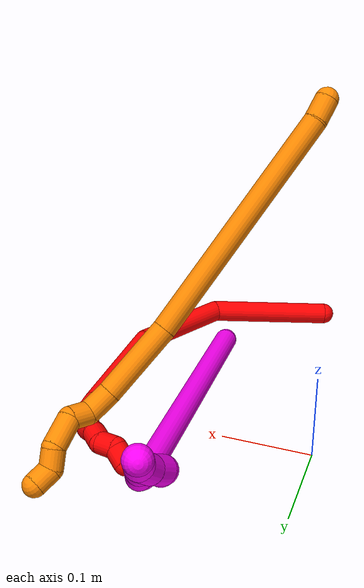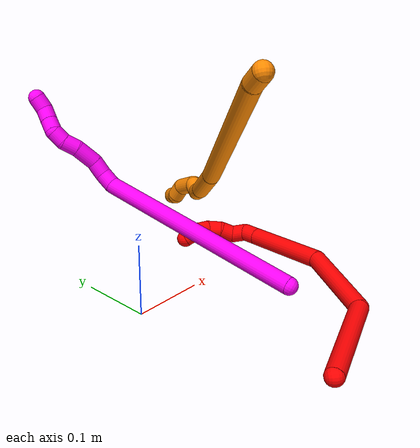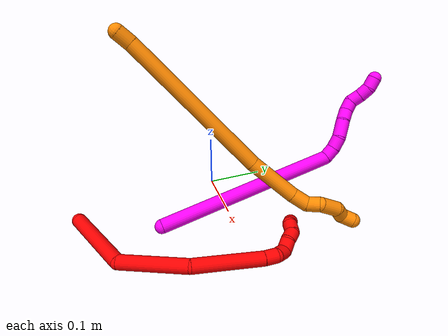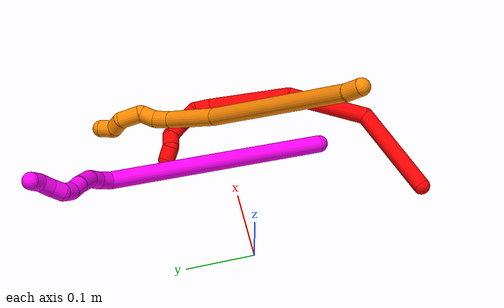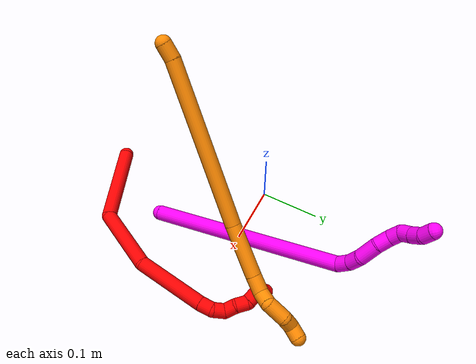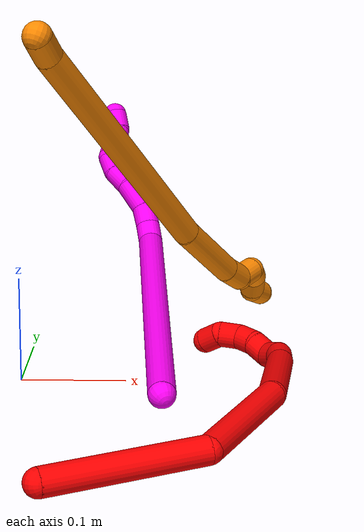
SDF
<sdf version="1.7">
 <world name="default">
  <model name="2">
   <static>0</static>
   <link name="2">
    <collision name="collision-cylinder-e_1_1_4">
     <pose>0.028242 0.057731 0.027329 -1.12868 0.416312 -0.265826</pose>
     <geometry><cylinder><radius>0.0125</radius><length>0.139677</length></cylinder></geometry>
     <surface>
      <friction><ode><mu>1.16</mu><mu2>1.16</mu2><slip1>0</slip1><slip2>0</slip2></ode></friction>
      <contact><ode><kp>1e+06</kp><kd>1</kd><max_vel>0</max_vel><min_depth>0.001</min_depth></ode></contact>
     </surface>
    </collision>
    <visual name="visual-cylinder-e_1_1_4">
     <pose>0.028242 0.057731 0.027329 -1.12868 0.416312 -0.265826</pose>
     <geometry><cylinder><radius>0.0125</radius><length>0.139677</length></cylinder></geometry>
     <material><ambient>1 0 0 1</ambient></material>
    </visual>
    <collision name="collision-cylinder-e_2_4_5">
     <pose>0.074362 0.168877 0.03733 -1.88448 0.308224 -0.421077</pose>
     <geometry><cylinder><radius>0.0125</radius><length>0.117863</length></cylinder></geometry>
     <surface>
      <friction><ode><mu>1.16</mu><mu2>1.16</mu2><slip1>0</slip1><slip2>0</slip2></ode></friction>
      <contact><ode><kp>1e+06</kp><kd>1</kd><max_vel>0</max_vel><min_depth>0.001</min_depth></ode></contact>
     </surface>
    </collision>
    <visual name="visual-cylinder-e_2_4_5">
     <pose>0.074362 0.168877 0.03733 -1.88448 0.308224 -0.421077</pose>
     <geometry><cylinder><radius>0.0125</radius><length>0.117863</length></cylinder></geometry>
     <material><ambient>1 0 0 1</ambient></material>
    </visual>
    <collision name="collision-cylinder-e_3_5_6">
     <pose>0.111744 0.263834 -0.017931 -2.31082 0.333737 -0.729604</pose>
     <geometry><cylinder><radius>0.0125</radius><length>0.119084</length></cylinder></geometry>
     <surface>
      <friction><ode><mu>1.16</mu><mu2>1.16</mu2><slip1>0</slip1><slip2>0</slip2></ode></friction>
      <contact><ode><kp>1e+06</kp><kd>1</kd><max_vel>0</max_vel><min_depth>0.001</min_depth></ode></contact>
     </surface>
    </collision>
    <visual name="visual-cylinder-e_3_5_6">
     <pose>0.111744 0.263834 -0.017931 -2.31082 0.333737 -0.729604</pose>
     <geometry><cylinder><radius>0.0125</radius><length>0.119084</length></cylinder></geometry>
     <material><ambient>1 0 0 1</ambient></material>
    </visual>
    <collision name="collision-cylinder-e_4_6_7">
     <pose>0.133722 0.31286 -0.063733 -2.38123 0.223981 -0.548643</pose>
     <geometry><cylinder><radius>0.0125</radius><length>0.022271</length></cylinder></geometry>
     <surface>
      <friction><ode><mu>1.16</mu><mu2>1.16</mu2><slip1>0</slip1><slip2>0</slip2></ode></friction>
      <contact><ode><kp>1e+06</kp><kd>1</kd><max_vel>0</max_vel><min_depth>0.001</min_depth></ode></contact>
     </surface>
    </collision>
    <visual name="visual-cylinder-e_4_6_7">
     <pose>0.133722 0.31286 -0.063733 -2.38123 0.223981 -0.548643</pose>
     <geometry><cylinder><radius>0.0125</radius><length>0.022271</length></cylinder></geometry>
     <material><ambient>1 0 0 1</ambient></material>
    </visual>
    <collision name="collision-cylinder-e_5_7_8">
     <pose>0.138631 0.322052 -0.081587 -2.97212 0.235929 -1.89789</pose>
     <geometry><cylinder><radius>0.0125</radius><length>0.020842</length></cylinder></geometry>
     <surface>
      <friction><ode><mu>1.16</mu><mu2>1.16</mu2><slip1>0</slip1><slip2>0</slip2></ode></friction>
      <contact><ode><kp>1e+06</kp><kd>1</kd><max_vel>0</max_vel><min_depth>0.001</min_depth></ode></contact>
     </surface>
    </collision>
    <visual name="visual-cylinder-e_5_7_8">
     <pose>0.138631 0.322052 -0.081587 -2.97212 0.235929 -1.89789</pose>
     <geometry><cylinder><radius>0.0125</radius><length>0.020842</length></cylinder></geometry>
     <material><ambient>1 0 0 1</ambient></material>
    </visual>
    <collision name="collision-cylinder-e_6_8_9">
     <pose>0.136167 0.32581 -0.100075 -2.90504 -0.51074 2.2873</pose>
     <geometry><cylinder><radius>0.0125</radius><length>0.020048</length></cylinder></geometry>
     <surface>
      <friction><ode><mu>1.16</mu><mu2>1.16</mu2><slip1>0</slip1><slip2>0</slip2></ode></friction>
      <contact><ode><kp>1e+06</kp><kd>1</kd><max_vel>0</max_vel><min_depth>0.001</min_depth></ode></contact>
     </surface>
    </collision>
    <visual name="visual-cylinder-e_6_8_9">
     <pose>0.136167 0.32581 -0.100075 -2.90504 -0.51074 2.2873</pose>
     <geometry><cylinder><radius>0.0125</radius><length>0.020048</length></cylinder></geometry>
     <material><ambient>1 0 0 1</ambient></material>
    </visual>
    <collision name="collision-cylinder-e_7_9_10">
     <pose>0.129329 0.328977 -0.118327 -3.02747 -0.194934 2.08412</pose>
     <geometry><cylinder><radius>0.0125</radius><length>0.020009</length></cylinder></geometry>
     <surface>
      <friction><ode><mu>1.16</mu><mu2>1.16</mu2><slip1>0</slip1><slip2>0</slip2></ode></friction>
      <contact><ode><kp>1e+06</kp><kd>1</kd><max_vel>0</max_vel><min_depth>0.001</min_depth></ode></contact>
     </surface>
    </collision>
    <visual name="visual-cylinder-e_7_9_10">
     <pose>0.129329 0.328977 -0.118327 -3.02747 -0.194934 2.08412</pose>
     <geometry><cylinder><radius>0.0125</radius><length>0.020009</length></cylinder></geometry>
     <material><ambient>1 0 0 1</ambient></material>
    </visual>
    <collision name="collision-cylinder-e_8_10_11">
     <pose>0.123284 0.325975 -0.136242 2.6742 -0.422147 -1.46574</pose>
     <geometry><cylinder><radius>0.0125</radius><length>0.020049</length></cylinder></geometry>
     <surface>
      <friction><ode><mu>1.16</mu><mu2>1.16</mu2><slip1>0</slip1><slip2>0</slip2></ode></friction>
      <contact><ode><kp>1e+06</kp><kd>1</kd><max_vel>0</max_vel><min_depth>0.001</min_depth></ode></contact>
     </surface>
    </collision>
    <visual name="visual-cylinder-e_8_10_11">
     <pose>0.123284 0.325975 -0.136242 2.6742 -0.422147 -1.46574</pose>
     <geometry><cylinder><radius>0.0125</radius><length>0.020049</length></cylinder></geometry>
     <material><ambient>1 0 0 1</ambient></material>
    </visual>
    <collision name="collision-cylinder-e_9_11_2">
     <pose>0.121621 0.318603 -0.153627 2.80261 0.244942 1.24705</pose>
     <geometry><cylinder><radius>0.0125</radius><length>0.020158</length></cylinder></geometry>
     <surface>
      <friction><ode><mu>1.16</mu><mu2>1.16</mu2><slip1>0</slip1><slip2>0</slip2></ode></friction>
      <contact><ode><kp>1e+06</kp><kd>1</kd><max_vel>0</max_vel><min_depth>0.001</min_depth></ode></contact>
     </surface>
    </collision>
    <visual name="visual-cylinder-e_9_11_2">
     <pose>0.121621 0.318603 -0.153627 2.80261 0.244942 1.24705</pose>
     <geometry><cylinder><radius>0.0125</radius><length>0.020158</length></cylinder></geometry>
     <material><ambient>1 0 0 1</ambient></material>
    </visual>
    <collision name="collision-sphere-2">
     <pose>0.124065 0.315351 -0.162849 0 -0 0</pose>
     <geometry><sphere><radius>0.0125</radius></sphere></geometry>
     <surface>
      <friction><ode><mu>1.16</mu><mu2>1.16</mu2><slip1>0</slip1><slip2>0</slip2></ode></friction>
      <contact><ode><kp>1e+06</kp><kd>1</kd><max_vel>0</max_vel><min_depth>0.001</min_depth></ode></contact>
     </surface>
    </collision>
    <visual name="visual-sphere-2">
     <pose>0.124065 0.315351 -0.162849 0 -0 0</pose>
     <geometry><sphere><radius>0.0125</radius></sphere></geometry>
     <material><ambient>1 0 0 1</ambient></material>
    </visual>
    <collision name="collision-sphere-11">
     <pose>0.119177 0.321855 -0.144406 0 -0 0</pose>
     <geometry><sphere><radius>0.0125</radius></sphere></geometry>
     <surface>
      <friction><ode><mu>1.16</mu><mu2>1.16</mu2><slip1>0</slip1><slip2>0</slip2></ode></friction>
      <contact><ode><kp>1e+06</kp><kd>1</kd><max_vel>0</max_vel><min_depth>0.001</min_depth></ode></contact>
     </surface>
    </collision>
    <visual name="visual-sphere-11">
     <pose>0.119177 0.321855 -0.144406 0 -0 0</pose>
     <geometry><sphere><radius>0.0125</radius></sphere></geometry>
     <material><ambient>1 0 0 1</ambient></material>
    </visual>
    <collision name="collision-sphere-10">
     <pose>0.127391 0.330095 -0.128079 0 -0 0</pose>
     <geometry><sphere><radius>0.0125</radius></sphere></geometry>
     <surface>
      <friction><ode><mu>1.16</mu><mu2>1.16</mu2><slip1>0</slip1><slip2>0</slip2></ode></friction>
      <contact><ode><kp>1e+06</kp><kd>1</kd><max_vel>0</max_vel><min_depth>0.001</min_depth></ode></contact>
     </surface>
    </collision>
    <visual name="visual-sphere-10">
     <pose>0.127391 0.330095 -0.128079 0 -0 0</pose>
     <geometry><sphere><radius>0.0125</radius></sphere></geometry>
     <material><ambient>1 0 0 1</ambient></material>
    </visual>
    <collision name="collision-sphere-9">
     <pose>0.131267 0.327859 -0.108576 0 -0 0</pose>
     <geometry><sphere><radius>0.0125</radius></sphere></geometry>
     <surface>
      <friction><ode><mu>1.16</mu><mu2>1.16</mu2><slip1>0</slip1><slip2>0</slip2></ode></friction>
      <contact><ode><kp>1e+06</kp><kd>1</kd><max_vel>0</max_vel><min_depth>0.001</min_depth></ode></contact>
     </surface>
    </collision>
    <visual name="visual-sphere-9">
     <pose>0.131267 0.327859 -0.108576 0 -0 0</pose>
     <geometry><sphere><radius>0.0125</radius></sphere></geometry>
     <material><ambient>1 0 0 1</ambient></material>
    </visual>
    <collision name="collision-sphere-4">
     <pose>0.056484 0.115463 0.054657 0 -0 0</pose>
     <geometry><sphere><radius>0.0125</radius></sphere></geometry>
     <surface>
      <friction><ode><mu>1.16</mu><mu2>1.16</mu2><slip1>0</slip1><slip2>0</slip2></ode></friction>
      <contact><ode><kp>1e+06</kp><kd>1</kd><max_vel>0</max_vel><min_depth>0.001</min_depth></ode></contact>
     </surface>
    </collision>
    <visual name="visual-sphere-4">
     <pose>0.056484 0.115463 0.054657 0 -0 0</pose>
     <geometry><sphere><radius>0.0125</radius></sphere></geometry>
     <material><ambient>1 0 0 1</ambient></material>
    </visual>
    <collision name="collision-sphere-1">
     <geometry><sphere><radius>0.0125</radius></sphere></geometry>
     <surface>
      <friction><ode><mu>1.16</mu><mu2>1.16</mu2><slip1>0</slip1><slip2>0</slip2></ode></friction>
      <contact><ode><kp>1e+06</kp><kd>1</kd><max_vel>0</max_vel><min_depth>0.001</min_depth></ode></contact>
     </surface>
    </collision>
    <visual name="visual-sphere-1">
     <geometry><sphere><radius>0.0125</radius></sphere></geometry>
     <material><ambient>1 0 0 1</ambient></material>
    </visual>
    <collision name="collision-sphere-8">
     <pose>0.141067 0.323761 -0.091574 0 -0 0</pose>
     <geometry><sphere><radius>0.0125</radius></sphere></geometry>
     <surface>
      <friction><ode><mu>1.16</mu><mu2>1.16</mu2><slip1>0</slip1><slip2>0</slip2></ode></friction>
      <contact><ode><kp>1e+06</kp><kd>1</kd><max_vel>0</max_vel><min_depth>0.001</min_depth></ode></contact>
     </surface>
    </collision>
    <visual name="visual-sphere-8">
     <pose>0.141067 0.323761 -0.091574 0 -0 0</pose>
     <geometry><sphere><radius>0.0125</radius></sphere></geometry>
     <material><ambient>1 0 0 1</ambient></material>
    </visual>
    <collision name="collision-sphere-5">
     <pose>0.09224 0.222292 0.020003 0 -0 0</pose>
     <geometry><sphere><radius>0.0125</radius></sphere></geometry>
     <surface>
      <friction><ode><mu>1.16</mu><mu2>1.16</mu2><slip1>0</slip1><slip2>0</slip2></ode></friction>
      <contact><ode><kp>1e+06</kp><kd>1</kd><max_vel>0</max_vel><min_depth>0.001</min_depth></ode></contact>
     </surface>
    </collision>
    <visual name="visual-sphere-5">
     <pose>0.09224 0.222292 0.020003 0 -0 0</pose>
     <geometry><sphere><radius>0.0125</radius></sphere></geometry>
     <material><ambient>1 0 0 1</ambient></material>
    </visual>
    <collision name="collision-sphere-6">
     <pose>0.131249 0.305377 -0.055866 0 -0 0</pose>
     <geometry><sphere><radius>0.0125</radius></sphere></geometry>
     <surface>
      <friction><ode><mu>1.16</mu><mu2>1.16</mu2><slip1>0</slip1><slip2>0</slip2></ode></friction>
      <contact><ode><kp>1e+06</kp><kd>1</kd><max_vel>0</max_vel><min_depth>0.001</min_depth></ode></contact>
     </surface>
    </collision>
    <visual name="visual-sphere-6">
     <pose>0.131249 0.305377 -0.055866 0 -0 0</pose>
     <geometry><sphere><radius>0.0125</radius></sphere></geometry>
     <material><ambient>1 0 0 1</ambient></material>
    </visual>
    <collision name="collision-sphere-7">
     <pose>0.136195 0.320343 -0.0716 0 -0 0</pose>
     <geometry><sphere><radius>0.0125</radius></sphere></geometry>
     <surface>
      <friction><ode><mu>1.16</mu><mu2>1.16</mu2><slip1>0</slip1><slip2>0</slip2></ode></friction>
      <contact><ode><kp>1e+06</kp><kd>1</kd><max_vel>0</max_vel><min_depth>0.001</min_depth></ode></contact>
     </surface>
    </collision>
    <visual name="visual-sphere-7">
     <pose>0.136195 0.320343 -0.0716 0 -0 0</pose>
     <geometry><sphere><radius>0.0125</radius></sphere></geometry>
     <material><ambient>1 0 0 1</ambient></material>
    </visual>
    <inertial>
     <pose>0.084249 0.198277 -0.014481 0 -0 0</pose>
     <mass>0.5</mass>
     <inertia>
      <ixx>0.000238</ixx>
      <ixy>0</ixy>
      <ixz>0</ixz>
      <iyy>-0.000131</iyy>
      <iyz>0</iyz>
      <izz>-0.000619</izz>
     </inertia>
    </inertial>
   </link>
   <pose>0.047116 -0.263269 0.012125 1.2337 1.09924 0.462341</pose>
  </model>
  <model name="10">
   <static>0</static>
   <link name="10">
    <collision name="collision-cylinder-e_1_1_4">
     <pose>-0.010525 0.065509 0.145848 -0.422159 -0.065737 0.01409</pose>
     <geometry><cylinder><radius>0.0125</radius><length>0.320461</length></cylinder></geometry>
     <surface>
      <friction><ode><mu>1.16</mu><mu2>1.16</mu2><slip1>0</slip1><slip2>0</slip2></ode></friction>
      <contact><ode><kp>1e+06</kp><kd>1</kd><max_vel>0</max_vel><min_depth>0.001</min_depth></ode></contact>
     </surface>
    </collision>
    <visual name="visual-cylinder-e_1_1_4">
     <pose>-0.010525 0.065509 0.145848 -0.422159 -0.065737 0.01409</pose>
     <geometry><cylinder><radius>0.0125</radius><length>0.320461</length></cylinder></geometry>
     <material><ambient>1 0 0.964706 1</ambient></material>
    </visual>
    <collision name="collision-cylinder-e_2_4_5">
     <pose>-0.017525 0.131438 0.302179 -0.03997 0.324155 -0.006536</pose>
     <geometry><cylinder><radius>0.0125</radius><length>0.022138</length></cylinder></geometry>
     <surface>
      <friction><ode><mu>1.16</mu><mu2>1.16</mu2><slip1>0</slip1><slip2>0</slip2></ode></friction>
      <contact><ode><kp>1e+06</kp><kd>1</kd><max_vel>0</max_vel><min_depth>0.001</min_depth></ode></contact>
     </surface>
    </collision>
    <visual name="visual-cylinder-e_2_4_5">
     <pose>-0.017525 0.131438 0.302179 -0.03997 0.324155 -0.006536</pose>
     <geometry><cylinder><radius>0.0125</radius><length>0.022138</length></cylinder></geometry>
     <material><ambient>1 0 0.964706 1</ambient></material>
    </visual>
    <collision name="collision-cylinder-e_3_5_6">
     <pose>-0.009051 0.129919 0.322328 0.197951 0.465321 0.04705</pose>
     <geometry><cylinder><radius>0.0125</radius><length>0.02206</length></cylinder></geometry>
     <surface>
      <friction><ode><mu>1.16</mu><mu2>1.16</mu2><slip1>0</slip1><slip2>0</slip2></ode></friction>
      <contact><ode><kp>1e+06</kp><kd>1</kd><max_vel>0</max_vel><min_depth>0.001</min_depth></ode></contact>
     </surface>
    </collision>
    <visual name="visual-cylinder-e_3_5_6">
     <pose>-0.009051 0.129919 0.322328 0.197951 0.465321 0.04705</pose>
     <geometry><cylinder><radius>0.0125</radius><length>0.02206</length></cylinder></geometry>
     <material><ambient>1 0 0.964706 1</ambient></material>
    </visual>
    <collision name="collision-cylinder-e_4_6_7">
     <pose>-0.000963 0.121292 0.346653 0.42802 0.192364 0.041931</pose>
     <geometry><cylinder><radius>0.0125</radius><length>0.032834</length></cylinder></geometry>
     <surface>
      <friction><ode><mu>1.16</mu><mu2>1.16</mu2><slip1>0</slip1><slip2>0</slip2></ode></friction>
      <contact><ode><kp>1e+06</kp><kd>1</kd><max_vel>0</max_vel><min_depth>0.001</min_depth></ode></contact>
     </surface>
    </collision>
    <visual name="visual-cylinder-e_4_6_7">
     <pose>-0.000963 0.121292 0.346653 0.42802 0.192364 0.041931</pose>
     <geometry><cylinder><radius>0.0125</radius><length>0.032834</length></cylinder></geometry>
     <material><ambient>1 0 0.964706 1</ambient></material>
    </visual>
    <collision name="collision-cylinder-e_5_7_8">
     <pose>0.00197 0.110656 0.371832 0.359021 -0.018333 -0.003327</pose>
     <geometry><cylinder><radius>0.0125</radius><length>0.022474</length></cylinder></geometry>
     <surface>
      <friction><ode><mu>1.16</mu><mu2>1.16</mu2><slip1>0</slip1><slip2>0</slip2></ode></friction>
      <contact><ode><kp>1e+06</kp><kd>1</kd><max_vel>0</max_vel><min_depth>0.001</min_depth></ode></contact>
     </surface>
    </collision>
    <visual name="visual-cylinder-e_5_7_8">
     <pose>0.00197 0.110656 0.371832 0.359021 -0.018333 -0.003327</pose>
     <geometry><cylinder><radius>0.0125</radius><length>0.022474</length></cylinder></geometry>
     <material><ambient>1 0 0.964706 1</ambient></material>
    </visual>
    <collision name="collision-cylinder-e_6_8_9">
     <pose>0.004734 0.104736 0.391711 0.207698 0.30106 0.031614</pose>
     <geometry><cylinder><radius>0.0125</radius><length>0.020031</length></cylinder></geometry>
     <surface>
      <friction><ode><mu>1.16</mu><mu2>1.16</mu2><slip1>0</slip1><slip2>0</slip2></ode></friction>
      <contact><ode><kp>1e+06</kp><kd>1</kd><max_vel>0</max_vel><min_depth>0.001</min_depth></ode></contact>
     </surface>
    </collision>
    <visual name="visual-cylinder-e_6_8_9">
     <pose>0.004734 0.104736 0.391711 0.207698 0.30106 0.031614</pose>
     <geometry><cylinder><radius>0.0125</radius><length>0.020031</length></cylinder></geometry>
     <material><ambient>1 0 0.964706 1</ambient></material>
    </visual>
    <collision name="collision-cylinder-e_7_9_10">
     <pose>0.012473 0.106345 0.409099 -0.419611 0.497043 -0.107969</pose>
     <geometry><cylinder><radius>0.0125</radius><length>0.020002</length></cylinder></geometry>
     <surface>
      <friction><ode><mu>1.16</mu><mu2>1.16</mu2><slip1>0</slip1><slip2>0</slip2></ode></friction>
      <contact><ode><kp>1e+06</kp><kd>1</kd><max_vel>0</max_vel><min_depth>0.001</min_depth></ode></contact>
     </surface>
    </collision>
    <visual name="visual-cylinder-e_7_9_10">
     <pose>0.012473 0.106345 0.409099 -0.419611 0.497043 -0.107969</pose>
     <geometry><cylinder><radius>0.0125</radius><length>0.020002</length></cylinder></geometry>
     <material><ambient>1 0 0.964706 1</ambient></material>
    </visual>
    <collision name="collision-cylinder-e_8_10_11">
     <pose>0.022769 0.112289 0.425119 -0.287467 0.585603 -0.087208</pose>
     <geometry><cylinder><radius>0.0125</radius><length>0.02</length></cylinder></geometry>
     <surface>
      <friction><ode><mu>1.16</mu><mu2>1.16</mu2><slip1>0</slip1><slip2>0</slip2></ode></friction>
      <contact><ode><kp>1e+06</kp><kd>1</kd><max_vel>0</max_vel><min_depth>0.001</min_depth></ode></contact>
     </surface>
    </collision>
    <visual name="visual-cylinder-e_8_10_11">
     <pose>0.022769 0.112289 0.425119 -0.287467 0.585603 -0.087208</pose>
     <geometry><cylinder><radius>0.0125</radius><length>0.02</length></cylinder></geometry>
     <material><ambient>1 0 0.964706 1</ambient></material>
    </visual>
    <collision name="collision-cylinder-e_9_11_2">
     <pose>0.032881 0.113204 0.441879 0.163687 0.476336 0.039823</pose>
     <geometry><cylinder><radius>0.0125</radius><length>0.02</length></cylinder></geometry>
     <surface>
      <friction><ode><mu>1.16</mu><mu2>1.16</mu2><slip1>0</slip1><slip2>0</slip2></ode></friction>
      <contact><ode><kp>1e+06</kp><kd>1</kd><max_vel>0</max_vel><min_depth>0.001</min_depth></ode></contact>
     </surface>
    </collision>
    <visual name="visual-cylinder-e_9_11_2">
     <pose>0.032881 0.113204 0.441879 0.163687 0.476336 0.039823</pose>
     <geometry><cylinder><radius>0.0125</radius><length>0.02</length></cylinder></geometry>
     <material><ambient>1 0 0.964706 1</ambient></material>
    </visual>
    <collision name="collision-sphere-2">
     <pose>0.037466 0.111756 0.450647 0 -0 0</pose>
     <geometry><sphere><radius>0.0125</radius></sphere></geometry>
     <surface>
      <friction><ode><mu>1.16</mu><mu2>1.16</mu2><slip1>0</slip1><slip2>0</slip2></ode></friction>
      <contact><ode><kp>1e+06</kp><kd>1</kd><max_vel>0</max_vel><min_depth>0.001</min_depth></ode></contact>
     </surface>
    </collision>
    <visual name="visual-sphere-2">
     <pose>0.037466 0.111756 0.450647 0 -0 0</pose>
     <geometry><sphere><radius>0.0125</radius></sphere></geometry>
     <material><ambient>1 0 0.964706 1</ambient></material>
    </visual>
    <collision name="collision-sphere-11">
     <pose>0.028296 0.114652 0.433111 0 -0 0</pose>
     <geometry><sphere><radius>0.0125</radius></sphere></geometry>
     <surface>
      <friction><ode><mu>1.16</mu><mu2>1.16</mu2><slip1>0</slip1><slip2>0</slip2></ode></friction>
      <contact><ode><kp>1e+06</kp><kd>1</kd><max_vel>0</max_vel><min_depth>0.001</min_depth></ode></contact>
     </surface>
    </collision>
    <visual name="visual-sphere-11">
     <pose>0.028296 0.114652 0.433111 0 -0 0</pose>
     <geometry><sphere><radius>0.0125</radius></sphere></geometry>
     <material><ambient>1 0 0.964706 1</ambient></material>
    </visual>
    <collision name="collision-sphere-10">
     <pose>0.017241 0.109927 0.417127 0 -0 0</pose>
     <geometry><sphere><radius>0.0125</radius></sphere></geometry>
     <surface>
      <friction><ode><mu>1.16</mu><mu2>1.16</mu2><slip1>0</slip1><slip2>0</slip2></ode></friction>
      <contact><ode><kp>1e+06</kp><kd>1</kd><max_vel>0</max_vel><min_depth>0.001</min_depth></ode></contact>
     </surface>
    </collision>
    <visual name="visual-sphere-10">
     <pose>0.017241 0.109927 0.417127 0 -0 0</pose>
     <geometry><sphere><radius>0.0125</radius></sphere></geometry>
     <material><ambient>1 0 0.964706 1</ambient></material>
    </visual>
    <collision name="collision-sphere-9">
     <pose>0.007704 0.102764 0.40107 0 -0 0</pose>
     <geometry><sphere><radius>0.0125</radius></sphere></geometry>
     <surface>
      <friction><ode><mu>1.16</mu><mu2>1.16</mu2><slip1>0</slip1><slip2>0</slip2></ode></friction>
      <contact><ode><kp>1e+06</kp><kd>1</kd><max_vel>0</max_vel><min_depth>0.001</min_depth></ode></contact>
     </surface>
    </collision>
    <visual name="visual-sphere-9">
     <pose>0.007704 0.102764 0.40107 0 -0 0</pose>
     <geometry><sphere><radius>0.0125</radius></sphere></geometry>
     <material><ambient>1 0 0.964706 1</ambient></material>
    </visual>
    <collision name="collision-sphere-4">
     <pose>-0.021051 0.131019 0.291695 0 -0 0</pose>
     <geometry><sphere><radius>0.0125</radius></sphere></geometry>
     <surface>
      <friction><ode><mu>1.16</mu><mu2>1.16</mu2><slip1>0</slip1><slip2>0</slip2></ode></friction>
      <contact><ode><kp>1e+06</kp><kd>1</kd><max_vel>0</max_vel><min_depth>0.001</min_depth></ode></contact>
     </surface>
    </collision>
    <visual name="visual-sphere-4">
     <pose>-0.021051 0.131019 0.291695 0 -0 0</pose>
     <geometry><sphere><radius>0.0125</radius></sphere></geometry>
     <material><ambient>1 0 0.964706 1</ambient></material>
    </visual>
    <collision name="collision-sphere-1">
     <geometry><sphere><radius>0.0125</radius></sphere></geometry>
     <surface>
      <friction><ode><mu>1.16</mu><mu2>1.16</mu2><slip1>0</slip1><slip2>0</slip2></ode></friction>
      <contact><ode><kp>1e+06</kp><kd>1</kd><max_vel>0</max_vel><min_depth>0.001</min_depth></ode></contact>
     </surface>
    </collision>
    <visual name="visual-sphere-1">
     <geometry><sphere><radius>0.0125</radius></sphere></geometry>
     <material><ambient>1 0 0.964706 1</ambient></material>
    </visual>
    <collision name="collision-sphere-8">
     <pose>0.001764 0.106708 0.382351 0 -0 0</pose>
     <geometry><sphere><radius>0.0125</radius></sphere></geometry>
     <surface>
      <friction><ode><mu>1.16</mu><mu2>1.16</mu2><slip1>0</slip1><slip2>0</slip2></ode></friction>
      <contact><ode><kp>1e+06</kp><kd>1</kd><max_vel>0</max_vel><min_depth>0.001</min_depth></ode></contact>
     </surface>
    </collision>
    <visual name="visual-sphere-8">
     <pose>0.001764 0.106708 0.382351 0 -0 0</pose>
     <geometry><sphere><radius>0.0125</radius></sphere></geometry>
     <material><ambient>1 0 0.964706 1</ambient></material>
    </visual>
    <collision name="collision-sphere-5">
     <pose>-0.014 0.131857 0.312663 0 -0 0</pose>
     <geometry><sphere><radius>0.0125</radius></sphere></geometry>
     <surface>
      <friction><ode><mu>1.16</mu><mu2>1.16</mu2><slip1>0</slip1><slip2>0</slip2></ode></friction>
      <contact><ode><kp>1e+06</kp><kd>1</kd><max_vel>0</max_vel><min_depth>0.001</min_depth></ode></contact>
     </surface>
    </collision>
    <visual name="visual-sphere-5">
     <pose>-0.014 0.131857 0.312663 0 -0 0</pose>
     <geometry><sphere><radius>0.0125</radius></sphere></geometry>
     <material><ambient>1 0 0.964706 1</ambient></material>
    </visual>
    <collision name="collision-sphere-6">
     <pose>-0.004101 0.12798 0.331993 0 -0 0</pose>
     <geometry><sphere><radius>0.0125</radius></sphere></geometry>
     <surface>
      <friction><ode><mu>1.16</mu><mu2>1.16</mu2><slip1>0</slip1><slip2>0</slip2></ode></friction>
      <contact><ode><kp>1e+06</kp><kd>1</kd><max_vel>0</max_vel><min_depth>0.001</min_depth></ode></contact>
     </surface>
    </collision>
    <visual name="visual-sphere-6">
     <pose>-0.004101 0.12798 0.331993 0 -0 0</pose>
     <geometry><sphere><radius>0.0125</radius></sphere></geometry>
     <material><ambient>1 0 0.964706 1</ambient></material>
    </visual>
    <collision name="collision-sphere-7">
     <pose>0.002176 0.114603 0.361314 0 -0 0</pose>
     <geometry><sphere><radius>0.0125</radius></sphere></geometry>
     <surface>
      <friction><ode><mu>1.16</mu><mu2>1.16</mu2><slip1>0</slip1><slip2>0</slip2></ode></friction>
      <contact><ode><kp>1e+06</kp><kd>1</kd><max_vel>0</max_vel><min_depth>0.001</min_depth></ode></contact>
     </surface>
    </collision>
    <visual name="visual-sphere-7">
     <pose>0.002176 0.114603 0.361314 0 -0 0</pose>
     <geometry><sphere><radius>0.0125</radius></sphere></geometry>
     <material><ambient>1 0 0.964706 1</ambient></material>
    </visual>
    <inertial>
     <pose>-0.004981 0.083947 0.227293 0 -0 0</pose>
     <mass>0.5</mass>
     <inertia>
      <ixx>0.002805</ixx>
      <ixy>0</ixy>
      <ixz>0</ixz>
      <iyy>0.002576</iyy>
      <iyz>0</iyz>
      <izz>-0.000913</izz>
     </inertia>
    </inertial>
   </link>
   <pose>0.13792 -0.131546 0.03564 -0.720556 -0.985044 -0.334154</pose>
  </model>
  <model name="19">
   <static>0</static>
   <link name="19">
    <collision name="collision-cylinder-e_1_1_4">
     <pose>0.005126 0.011648 -0.002245 -1.76122 0.407899 -0.490898</pose>
     <geometry><cylinder><radius>0.0125</radius><length>0.025846</length></cylinder></geometry>
     <surface>
      <friction><ode><mu>1.16</mu><mu2>1.16</mu2><slip1>0</slip1><slip2>0</slip2></ode></friction>
      <contact><ode><kp>1e+06</kp><kd>1</kd><max_vel>0</max_vel><min_depth>0.001</min_depth></ode></contact>
     </surface>
    </collision>
    <visual name="visual-cylinder-e_1_1_4">
     <pose>0.005126 0.011648 -0.002245 -1.76122 0.407899 -0.490898</pose>
     <geometry><cylinder><radius>0.0125</radius><length>0.025846</length></cylinder></geometry>
     <material><ambient>0.996078 0.537255 0 1</ambient></material>
    </visual>
    <collision name="collision-cylinder-e_2_4_5">
     <pose>0.084169 0.129061 -0.027544 -1.78541 0.599116 -0.732274</pose>
     <geometry><cylinder><radius>0.0125</radius><length>0.262154</length></cylinder></geometry>
     <surface>
      <friction><ode><mu>1.16</mu><mu2>1.16</mu2><slip1>0</slip1><slip2>0</slip2></ode></friction>
      <contact><ode><kp>1e+06</kp><kd>1</kd><max_vel>0</max_vel><min_depth>0.001</min_depth></ode></contact>
     </surface>
    </collision>
    <visual name="visual-cylinder-e_2_4_5">
     <pose>0.084169 0.129061 -0.027544 -1.78541 0.599116 -0.732274</pose>
     <geometry><cylinder><radius>0.0125</radius><length>0.262154</length></cylinder></geometry>
     <material><ambient>0.996078 0.537255 0 1</ambient></material>
    </visual>
    <collision name="collision-cylinder-e_3_5_6">
     <pose>0.182205 0.269428 -0.052755 -1.63304 0.607848 -0.644333</pose>
     <geometry><cylinder><radius>0.0125</radius><length>0.08447</length></cylinder></geometry>
     <surface>
      <friction><ode><mu>1.16</mu><mu2>1.16</mu2><slip1>0</slip1><slip2>0</slip2></ode></friction>
      <contact><ode><kp>1e+06</kp><kd>1</kd><max_vel>0</max_vel><min_depth>0.001</min_depth></ode></contact>
     </surface>
    </collision>
    <visual name="visual-cylinder-e_3_5_6">
     <pose>0.182205 0.269428 -0.052755 -1.63304 0.607848 -0.644333</pose>
     <geometry><cylinder><radius>0.0125</radius><length>0.08447</length></cylinder></geometry>
     <material><ambient>0.996078 0.537255 0 1</ambient></material>
    </visual>
    <collision name="collision-cylinder-e_4_6_7">
     <pose>0.214556 0.315825 -0.053851 -1.48113 0.607364 -0.557987</pose>
     <geometry><cylinder><radius>0.0125</radius><length>0.028842</length></cylinder></geometry>
     <surface>
      <friction><ode><mu>1.16</mu><mu2>1.16</mu2><slip1>0</slip1><slip2>0</slip2></ode></friction>
      <contact><ode><kp>1e+06</kp><kd>1</kd><max_vel>0</max_vel><min_depth>0.001</min_depth></ode></contact>
     </surface>
    </collision>
    <visual name="visual-cylinder-e_4_6_7">
     <pose>0.214556 0.315825 -0.053851 -1.48113 0.607364 -0.557987</pose>
     <geometry><cylinder><radius>0.0125</radius><length>0.028842</length></cylinder></geometry>
     <material><ambient>0.996078 0.537255 0 1</ambient></material>
    </visual>
    <collision name="collision-cylinder-e_5_7_8">
     <pose>0.227515 0.334453 -0.045345 -0.742535 0.43765 -0.172729</pose>
     <geometry><cylinder><radius>0.0125</radius><length>0.022315</length></cylinder></geometry>
     <surface>
      <friction><ode><mu>1.16</mu><mu2>1.16</mu2><slip1>0</slip1><slip2>0</slip2></ode></friction>
      <contact><ode><kp>1e+06</kp><kd>1</kd><max_vel>0</max_vel><min_depth>0.001</min_depth></ode></contact>
     </surface>
    </collision>
    <visual name="visual-cylinder-e_5_7_8">
     <pose>0.227515 0.334453 -0.045345 -0.742535 0.43765 -0.172729</pose>
     <geometry><cylinder><radius>0.0125</radius><length>0.022315</length></cylinder></geometry>
     <material><ambient>0.996078 0.537255 0 1</ambient></material>
    </visual>
    <collision name="collision-cylinder-e_6_8_9">
     <pose>0.235354 0.357626 -0.036526 -1.48696 0.187466 -0.172452</pose>
     <geometry><cylinder><radius>0.0125</radius><length>0.03338</length></cylinder></geometry>
     <surface>
      <friction><ode><mu>1.16</mu><mu2>1.16</mu2><slip1>0</slip1><slip2>0</slip2></ode></friction>
      <contact><ode><kp>1e+06</kp><kd>1</kd><max_vel>0</max_vel><min_depth>0.001</min_depth></ode></contact>
     </surface>
    </collision>
    <visual name="visual-cylinder-e_6_8_9">
     <pose>0.235354 0.357626 -0.036526 -1.48696 0.187466 -0.172452</pose>
     <geometry><cylinder><radius>0.0125</radius><length>0.03338</length></cylinder></geometry>
     <material><ambient>0.996078 0.537255 0 1</ambient></material>
    </visual>
    <collision name="collision-cylinder-e_7_9_10">
     <pose>0.240272 0.383311 -0.040136 -2.06067 0.169049 -0.28054</pose>
     <geometry><cylinder><radius>0.0125</radius><length>0.021488</length></cylinder></geometry>
     <surface>
      <friction><ode><mu>1.16</mu><mu2>1.16</mu2><slip1>0</slip1><slip2>0</slip2></ode></friction>
      <contact><ode><kp>1e+06</kp><kd>1</kd><max_vel>0</max_vel><min_depth>0.001</min_depth></ode></contact>
     </surface>
    </collision>
    <visual name="visual-cylinder-e_7_9_10">
     <pose>0.240272 0.383311 -0.040136 -2.06067 0.169049 -0.28054</pose>
     <geometry><cylinder><radius>0.0125</radius><length>0.021488</length></cylinder></geometry>
     <material><ambient>0.996078 0.537255 0 1</ambient></material>
    </visual>
    <collision name="collision-cylinder-e_8_10_2">
     <pose>0.247281 0.401823 -0.042989 -1.34251 0.504928 -0.404213</pose>
     <geometry><cylinder><radius>0.0125</radius><length>0.021505</length></cylinder></geometry>
     <surface>
      <friction><ode><mu>1.16</mu><mu2>1.16</mu2><slip1>0</slip1><slip2>0</slip2></ode></friction>
      <contact><ode><kp>1e+06</kp><kd>1</kd><max_vel>0</max_vel><min_depth>0.001</min_depth></ode></contact>
     </surface>
    </collision>
    <visual name="visual-cylinder-e_8_10_2">
     <pose>0.247281 0.401823 -0.042989 -1.34251 0.504928 -0.404213</pose>
     <geometry><cylinder><radius>0.0125</radius><length>0.021505</length></cylinder></geometry>
     <material><ambient>0.996078 0.537255 0 1</ambient></material>
    </visual>
    <collision name="collision-sphere-2">
     <pose>0.252483 0.410989 -0.04086 0 -0 0</pose>
     <geometry><sphere><radius>0.0125</radius></sphere></geometry>
     <surface>
      <friction><ode><mu>1.16</mu><mu2>1.16</mu2><slip1>0</slip1><slip2>0</slip2></ode></friction>
      <contact><ode><kp>1e+06</kp><kd>1</kd><max_vel>0</max_vel><min_depth>0.001</min_depth></ode></contact>
     </surface>
    </collision>
    <visual name="visual-sphere-2">
     <pose>0.252483 0.410989 -0.04086 0 -0 0</pose>
     <geometry><sphere><radius>0.0125</radius></sphere></geometry>
     <material><ambient>0.996078 0.537255 0 1</ambient></material>
    </visual>
    <collision name="collision-sphere-10">
     <pose>0.24208 0.392656 -0.045119 0 -0 0</pose>
     <geometry><sphere><radius>0.0125</radius></sphere></geometry>
     <surface>
      <friction><ode><mu>1.16</mu><mu2>1.16</mu2><slip1>0</slip1><slip2>0</slip2></ode></friction>
      <contact><ode><kp>1e+06</kp><kd>1</kd><max_vel>0</max_vel><min_depth>0.001</min_depth></ode></contact>
     </surface>
    </collision>
    <visual name="visual-sphere-10">
     <pose>0.24208 0.392656 -0.045119 0 -0 0</pose>
     <geometry><sphere><radius>0.0125</radius></sphere></geometry>
     <material><ambient>0.996078 0.537255 0 1</ambient></material>
    </visual>
    <collision name="collision-sphere-9">
     <pose>0.238464 0.373966 -0.035153 0 -0 0</pose>
     <geometry><sphere><radius>0.0125</radius></sphere></geometry>
     <surface>
      <friction><ode><mu>1.16</mu><mu2>1.16</mu2><slip1>0</slip1><slip2>0</slip2></ode></friction>
      <contact><ode><kp>1e+06</kp><kd>1</kd><max_vel>0</max_vel><min_depth>0.001</min_depth></ode></contact>
     </surface>
    </collision>
    <visual name="visual-sphere-9">
     <pose>0.238464 0.373966 -0.035153 0 -0 0</pose>
     <geometry><sphere><radius>0.0125</radius></sphere></geometry>
     <material><ambient>0.996078 0.537255 0 1</ambient></material>
    </visual>
    <collision name="collision-sphere-4">
     <pose>0.010253 0.023296 -0.004491 0 -0 0</pose>
     <geometry><sphere><radius>0.0125</radius></sphere></geometry>
     <surface>
      <friction><ode><mu>1.16</mu><mu2>1.16</mu2><slip1>0</slip1><slip2>0</slip2></ode></friction>
      <contact><ode><kp>1e+06</kp><kd>1</kd><max_vel>0</max_vel><min_depth>0.001</min_depth></ode></contact>
     </surface>
    </collision>
    <visual name="visual-sphere-4">
     <pose>0.010253 0.023296 -0.004491 0 -0 0</pose>
     <geometry><sphere><radius>0.0125</radius></sphere></geometry>
     <material><ambient>0.996078 0.537255 0 1</ambient></material>
    </visual>
    <collision name="collision-sphere-1">
     <geometry><sphere><radius>0.0125</radius></sphere></geometry>
     <surface>
      <friction><ode><mu>1.16</mu><mu2>1.16</mu2><slip1>0</slip1><slip2>0</slip2></ode></friction>
      <contact><ode><kp>1e+06</kp><kd>1</kd><max_vel>0</max_vel><min_depth>0.001</min_depth></ode></contact>
     </surface>
    </collision>
    <visual name="visual-sphere-1">
     <geometry><sphere><radius>0.0125</radius></sphere></geometry>
     <material><ambient>0.996078 0.537255 0 1</ambient></material>
    </visual>
    <collision name="collision-sphere-8">
     <pose>0.232243 0.341286 -0.037899 0 -0 0</pose>
     <geometry><sphere><radius>0.0125</radius></sphere></geometry>
     <surface>
      <friction><ode><mu>1.16</mu><mu2>1.16</mu2><slip1>0</slip1><slip2>0</slip2></ode></friction>
      <contact><ode><kp>1e+06</kp><kd>1</kd><max_vel>0</max_vel><min_depth>0.001</min_depth></ode></contact>
     </surface>
    </collision>
    <visual name="visual-sphere-8">
     <pose>0.232243 0.341286 -0.037899 0 -0 0</pose>
     <geometry><sphere><radius>0.0125</radius></sphere></geometry>
     <material><ambient>0.996078 0.537255 0 1</ambient></material>
    </visual>
    <collision name="collision-sphere-5">
     <pose>0.158084 0.234825 -0.050598 0 -0 0</pose>
     <geometry><sphere><radius>0.0125</radius></sphere></geometry>
     <surface>
      <friction><ode><mu>1.16</mu><mu2>1.16</mu2><slip1>0</slip1><slip2>0</slip2></ode></friction>
      <contact><ode><kp>1e+06</kp><kd>1</kd><max_vel>0</max_vel><min_depth>0.001</min_depth></ode></contact>
     </surface>
    </collision>
    <visual name="visual-sphere-5">
     <pose>0.158084 0.234825 -0.050598 0 -0 0</pose>
     <geometry><sphere><radius>0.0125</radius></sphere></geometry>
     <material><ambient>0.996078 0.537255 0 1</ambient></material>
    </visual>
    <collision name="collision-sphere-6">
     <pose>0.206326 0.304031 -0.054911 0 -0 0</pose>
     <geometry><sphere><radius>0.0125</radius></sphere></geometry>
     <surface>
      <friction><ode><mu>1.16</mu><mu2>1.16</mu2><slip1>0</slip1><slip2>0</slip2></ode></friction>
      <contact><ode><kp>1e+06</kp><kd>1</kd><max_vel>0</max_vel><min_depth>0.001</min_depth></ode></contact>
     </surface>
    </collision>
    <visual name="visual-sphere-6">
     <pose>0.206326 0.304031 -0.054911 0 -0 0</pose>
     <geometry><sphere><radius>0.0125</radius></sphere></geometry>
     <material><ambient>0.996078 0.537255 0 1</ambient></material>
    </visual>
    <collision name="collision-sphere-7">
     <pose>0.222786 0.32762 -0.052791 0 -0 0</pose>
     <geometry><sphere><radius>0.0125</radius></sphere></geometry>
     <surface>
      <friction><ode><mu>1.16</mu><mu2>1.16</mu2><slip1>0</slip1><slip2>0</slip2></ode></friction>
      <contact><ode><kp>1e+06</kp><kd>1</kd><max_vel>0</max_vel><min_depth>0.001</min_depth></ode></contact>
     </surface>
    </collision>
    <visual name="visual-sphere-7">
     <pose>0.222786 0.32762 -0.052791 0 -0 0</pose>
     <geometry><sphere><radius>0.0125</radius></sphere></geometry>
     <material><ambient>0.996078 0.537255 0 1</ambient></material>
    </visual>
    <inertial>
     <pose>0.134381 0.204562 -0.034613 0 -0 0</pose>
     <mass>0.5</mass>
     <inertia>
      <ixx>0.000131</ixx>
      <ixy>0</ixy>
      <ixz>0</ixz>
      <iyy>-0.000497</iyy>
      <iyz>0</iyz>
      <izz>-0.002168</izz>
     </inertia>
    </inertial>
   </link>
   <pose>0.040633 -0.152139 0.338712 -0.506039 0.302056 -0.071263</pose>
  </model>
 </world>
</sdf>
